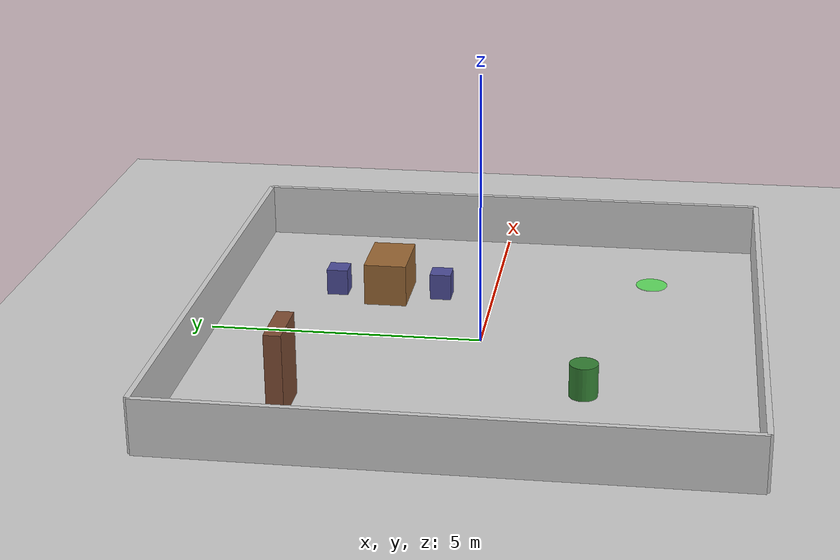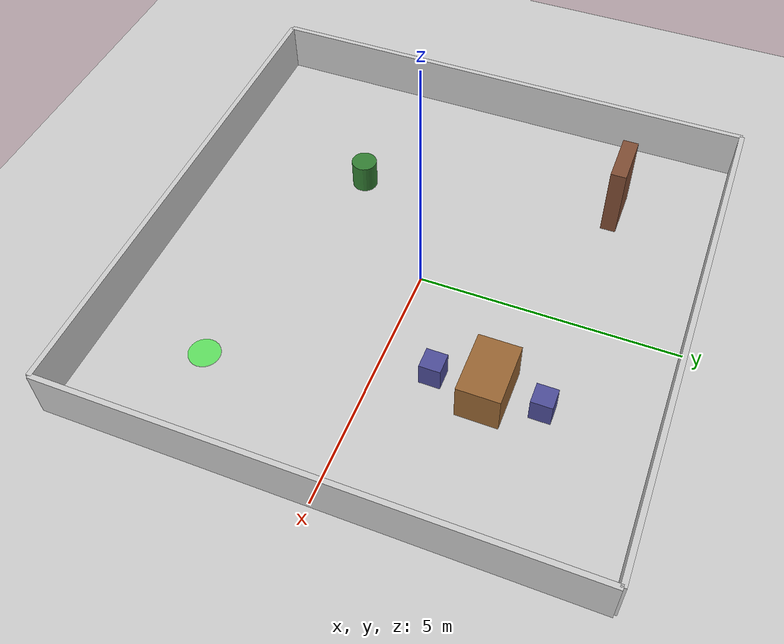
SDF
<?xml version="1.0" ?>
<!--
  Semantic Test World for MCP Integration

  A simple indoor environment with labeled objects for testing
  semantic perception and GNN-based scene understanding.
-->
<sdf version="1.6">
  <world name="semantic_test_world">

    <!-- Physics -->
    <physics type="ode">
      <max_step_size>0.001</max_step_size>
      <real_time_factor>1</real_time_factor>
      <real_time_update_rate>1000</real_time_update_rate>
    </physics>

    <!-- Lighting -->
    <include>
      <uri>model://sun</uri>
    </include>

    <!-- Ground Plane -->
    <include>
      <uri>model://ground_plane</uri>
    </include>

    <!-- Room Walls -->
    <!-- North Wall -->
    <model name="wall_north">
      <static>true</static>
      <pose>0 5 0.5 0 0 0</pose>
      <link name="link">
        <collision name="collision">
          <geometry>
            <box><size>10 0.1 1</size></box>
          </geometry>
        </collision>
        <visual name="visual">
          <geometry>
            <box><size>10 0.1 1</size></box>
          </geometry>
          <material>
            <ambient>0.8 0.8 0.8 1</ambient>
          </material>
        </visual>
      </link>
    </model>

    <!-- South Wall -->
    <model name="wall_south">
      <static>true</static>
      <pose>0 -5 0.5 0 0 0</pose>
      <link name="link">
        <collision name="collision">
          <geometry>
            <box><size>10 0.1 1</size></box>
          </geometry>
        </collision>
        <visual name="visual">
          <geometry>
            <box><size>10 0.1 1</size></box>
          </geometry>
          <material>
            <ambient>0.8 0.8 0.8 1</ambient>
          </material>
        </visual>
      </link>
    </model>

    <!-- East Wall -->
    <model name="wall_east">
      <static>true</static>
      <pose>5 0 0.5 0 0 0</pose>
      <link name="link">
        <collision name="collision">
          <geometry>
            <box><size>0.1 10 1</size></box>
          </geometry>
        </collision>
        <visual name="visual">
          <geometry>
            <box><size>0.1 10 1</size></box>
          </geometry>
          <material>
            <ambient>0.8 0.8 0.8 1</ambient>
          </material>
        </visual>
      </link>
    </model>

    <!-- West Wall -->
    <model name="wall_west">
      <static>true</static>
      <pose>-5 0 0.5 0 0 0</pose>
      <link name="link">
        <collision name="collision">
          <geometry>
            <box><size>0.1 10 1</size></box>
          </geometry>
        </collision>
        <visual name="visual">
          <geometry>
            <box><size>0.1 10 1</size></box>
          </geometry>
          <material>
            <ambient>0.8 0.8 0.8 1</ambient>
          </material>
        </visual>
      </link>
    </model>

    <!-- Obstacles -->
    <!-- Table -->
    <model name="table_1">
      <static>true</static>
      <pose>2 2 0.4 0 0 0</pose>
      <link name="link">
        <collision name="collision">
          <geometry>
            <box><size>1.2 0.8 0.8</size></box>
          </geometry>
        </collision>
        <visual name="visual">
          <geometry>
            <box><size>1.2 0.8 0.8</size></box>
          </geometry>
          <material>
            <ambient>0.6 0.4 0.2 1</ambient>
          </material>
        </visual>
      </link>
    </model>

    <!-- Chair 1 -->
    <model name="chair_1">
      <static>true</static>
      <pose>2 1 0.25 0 0 0</pose>
      <link name="link">
        <collision name="collision">
          <geometry>
            <box><size>0.4 0.4 0.5</size></box>
          </geometry>
        </collision>
        <visual name="visual">
          <geometry>
            <box><size>0.4 0.4 0.5</size></box>
          </geometry>
          <material>
            <ambient>0.3 0.3 0.6 1</ambient>
          </material>
        </visual>
      </link>
    </model>

    <!-- Chair 2 -->
    <model name="chair_2">
      <static>true</static>
      <pose>2 3 0.25 0 0 3.14159</pose>
      <link name="link">
        <collision name="collision">
          <geometry>
            <box><size>0.4 0.4 0.5</size></box>
          </geometry>
        </collision>
        <visual name="visual">
          <geometry>
            <box><size>0.4 0.4 0.5</size></box>
          </geometry>
          <material>
            <ambient>0.3 0.3 0.6 1</ambient>
          </material>
        </visual>
      </link>
    </model>

    <!-- Bookshelf -->
    <model name="bookshelf">
      <static>true</static>
      <pose>-3 3 0.75 0 0 0</pose>
      <link name="link">
        <collision name="collision">
          <geometry>
            <box><size>1.0 0.3 1.5</size></box>
          </geometry>
        </collision>
        <visual name="visual">
          <geometry>
            <box><size>1.0 0.3 1.5</size></box>
          </geometry>
          <material>
            <ambient>0.5 0.3 0.2 1</ambient>
          </material>
        </visual>
      </link>
    </model>

    <!-- Cylindrical Obstacle (Plant pot) -->
    <model name="plant_pot">
      <static>true</static>
      <pose>-2 -2 0.3 0 0 0</pose>
      <link name="link">
        <collision name="collision">
          <geometry>
            <cylinder>
              <radius>0.25</radius>
              <length>0.6</length>
            </cylinder>
          </geometry>
        </collision>
        <visual name="visual">
          <geometry>
            <cylinder>
              <radius>0.25</radius>
              <length>0.6</length>
            </cylinder>
          </geometry>
          <material>
            <ambient>0.2 0.5 0.2 1</ambient>
          </material>
        </visual>
      </link>
    </model>

    <!-- Goal marker (visual only, no collision) -->
    <model name="goal_marker">
      <static>true</static>
      <pose>3 -3 0.01 0 0 0</pose>
      <link name="link">
        <visual name="visual">
          <geometry>
            <cylinder>
              <radius>0.3</radius>
              <length>0.02</length>
            </cylinder>
          </geometry>
          <material>
            <ambient>0 1 0 0.5</ambient>
          </material>
        </visual>
      </link>
    </model>

  </world>
</sdf>
